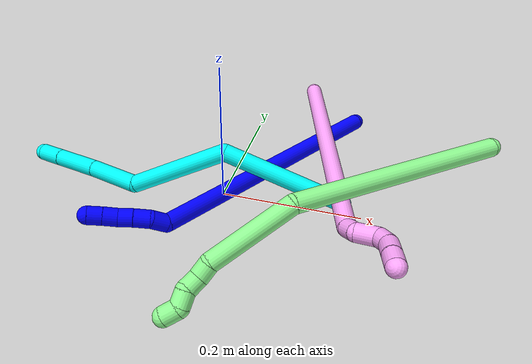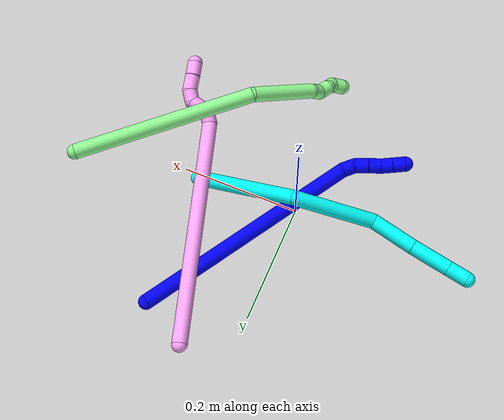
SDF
<sdf version="1.7">
 <world name="default">
  <model name="photoneo_s_sensor">
   <static>1</static>
   <pose>0 0 2 1.57079 1.57079 3.14159</pose>
   <link name="link">
    <inertial><mass>0.1</mass></inertial>
    <sensor name="sensor" type="depth">
     <update_rate>30</update_rate>
     <camera>
      <horizontal_fov>1.22</horizontal_fov>
      <image><width>1920</width><height>1200</height><format>B8G8R8</format></image>
      <clip><near>0.1</near><far>4</far></clip>
      <depth_camera><output>points</output></depth_camera>
     </camera>
     <plugin name="camera_plugin" filename="libgazebo_ros_depth_camera.so">
      <baseline>0.2</baseline>
      <alwaysOn>1</alwaysOn>
      <updateRate>0.0</updateRate>
      <cameraName>camera_ir</cameraName>
      <imageTopicName>/camera/color/image_raw</imageTopicName>
      <cameraInfoTopicName>/camera/color/camera_info</cameraInfoTopicName>
      <depthImageTopicName>/camera/depth/image_raw</depthImageTopicName>
      <depthImageCameraInfoTopicName>/camera/depth/camera_info</depthImageCameraInfoTopicName>
      <pointCloudTopicName>/camera/depth/points</pointCloudTopicName>
      <frameName>fr_optical</frameName>
      <pointCloudCutoff>0.1</pointCloudCutoff>
      <pointCloudCutoffMax>2.0</pointCloudCutoffMax>
      <distortionK1>0</distortionK1>
      <distortionK2>0</distortionK2>
      <distortionK3>0</distortionK3>
      <distortionT1>0</distortionT1>
      <distortionT2>0</distortionT2>
      <CxPrime>0</CxPrime>
      <Cx>0</Cx>
      <Cy>0</Cy>
      <focalLength>0</focalLength>
      <hackBaseline>0</hackBaseline>
     </plugin>
    </sensor>
   </link>
  </model>
  <model name="bin">
   <static>1</static>
   <link name="bottom">
    <collision name="collision-bottom">
     <pose>0 0 -0.01 0 -0 0</pose>
     <geometry><box><size>0.8 0.6 0.02</size></box></geometry>
     <surface>
      <friction><ode><mu>100</mu><mu2>100</mu2></ode></friction>
      <contact><collide_bitmask>65535</collide_bitmask></contact>
     </surface>
    </collision>
   </link>
   <link name="west_wall">
    <collision name="collision-west_wall">
     <pose>-0.41 0 0.1 0 -0 0</pose>
     <geometry><box><size>0.02 0.6 0.2</size></box></geometry>
     <surface>
      <friction><ode><mu>100</mu><mu2>100</mu2></ode></friction>
      <contact><collide_bitmask>65535</collide_bitmask></contact>
     </surface>
    </collision>
   </link>
   <link name="east_wall">
    <collision name="collision-east_wall">
     <pose>0.41 0 0.1 0 -0 0</pose>
     <geometry><box><size>0.02 0.6 0.2</size></box></geometry>
     <surface>
      <friction><ode><mu>100</mu><mu2>100</mu2></ode></friction>
      <contact><collide_bitmask>65535</collide_bitmask></contact>
     </surface>
    </collision>
   </link>
   <link name="south_wall">
    <collision name="collision-south_wall">
     <pose>0 -0.31 0.1 0 -0 0</pose>
     <geometry><box><size>0.8 0.02 0.2</size></box></geometry>
     <surface>
      <friction><ode><mu>100</mu><mu2>100</mu2></ode></friction>
      <contact><collide_bitmask>65535</collide_bitmask></contact>
     </surface>
    </collision>
   </link>
   <link name="north_wall">
    <collision name="collision-north_wall">
     <pose>0 0.31 0.1 0 -0 0</pose>
     <geometry><box><size>0.8 0.02 0.2</size></box></geometry>
     <surface>
      <friction><ode><mu>100</mu><mu2>100</mu2></ode></friction>
      <contact><collide_bitmask>65535</collide_bitmask></contact>
     </surface>
    </collision>
   </link>
  </model>
  <model name="1">
   <static>0</static>
   <link name="1">
    <collision name="collision-cylinder-e_1_1_4">
     <pose>-0.087661 -0.138229 0.10966 0.90014 -0.461099 -0.225844</pose>
     <geometry><cylinder><radius>0.0125</radius><length>0.394041</length></cylinder></geometry>
     <surface>
      <friction><ode><mu>1.16</mu><mu2>1.16</mu2><slip1>0</slip1><slip2>0</slip2></ode></friction>
      <contact><ode><kp>1e+06</kp><kd>1</kd><max_vel>0</max_vel><min_depth>0.001</min_depth></ode></contact>
     </surface>
    </collision>
    <visual name="visual-cylinder-e_1_1_4">
     <pose>-0.087661 -0.138229 0.10966 0.90014 -0.461099 -0.225844</pose>
     <geometry><cylinder><radius>0.0125</radius><length>0.394041</length></cylinder></geometry>
     <material><ambient>0 0 1 1</ambient></material>
    </visual>
    <collision name="collision-cylinder-e_2_4_5">
     <pose>-0.173062 -0.286502 0.22463 1.08451 0.196369 0.118554</pose>
     <geometry><cylinder><radius>0.0125</radius><length>0.023167</length></cylinder></geometry>
     <surface>
      <friction><ode><mu>1.16</mu><mu2>1.16</mu2><slip1>0</slip1><slip2>0</slip2></ode></friction>
      <contact><ode><kp>1e+06</kp><kd>1</kd><max_vel>0</max_vel><min_depth>0.001</min_depth></ode></contact>
     </surface>
    </collision>
    <visual name="visual-cylinder-e_2_4_5">
     <pose>-0.173062 -0.286502 0.22463 1.08451 0.196369 0.118554</pose>
     <geometry><cylinder><radius>0.0125</radius><length>0.023167</length></cylinder></geometry>
     <material><ambient>0 0 1 1</ambient></material>
    </visual>
    <collision name="collision-cylinder-e_3_5_6">
     <pose>-0.168375 -0.303322 0.238568 0.665735 0.217689 0.075525</pose>
     <geometry><cylinder><radius>0.0125</radius><length>0.022472</length></cylinder></geometry>
     <surface>
      <friction><ode><mu>1.16</mu><mu2>1.16</mu2><slip1>0</slip1><slip2>0</slip2></ode></friction>
      <contact><ode><kp>1e+06</kp><kd>1</kd><max_vel>0</max_vel><min_depth>0.001</min_depth></ode></contact>
     </surface>
    </collision>
    <visual name="visual-cylinder-e_3_5_6">
     <pose>-0.168375 -0.303322 0.238568 0.665735 0.217689 0.075525</pose>
     <geometry><cylinder><radius>0.0125</radius><length>0.022472</length></cylinder></geometry>
     <material><ambient>0 0 1 1</ambient></material>
    </visual>
    <collision name="collision-cylinder-e_4_6_7">
     <pose>-0.16413 -0.315647 0.255399 0.594744 0.181602 0.055793</pose>
     <geometry><cylinder><radius>0.0125</radius><length>0.02014</length></cylinder></geometry>
     <surface>
      <friction><ode><mu>1.16</mu><mu2>1.16</mu2><slip1>0</slip1><slip2>0</slip2></ode></friction>
      <contact><ode><kp>1e+06</kp><kd>1</kd><max_vel>0</max_vel><min_depth>0.001</min_depth></ode></contact>
     </surface>
    </collision>
    <visual name="visual-cylinder-e_4_6_7">
     <pose>-0.16413 -0.315647 0.255399 0.594744 0.181602 0.055793</pose>
     <geometry><cylinder><radius>0.0125</radius><length>0.02014</length></cylinder></geometry>
     <material><ambient>0 0 1 1</ambient></material>
    </visual>
    <collision name="collision-cylinder-e_5_7_8">
     <pose>-0.160406 -0.327988 0.270786 0.757379 0.190414 0.075958</pose>
     <geometry><cylinder><radius>0.0125</radius><length>0.020134</length></cylinder></geometry>
     <surface>
      <friction><ode><mu>1.16</mu><mu2>1.16</mu2><slip1>0</slip1><slip2>0</slip2></ode></friction>
      <contact><ode><kp>1e+06</kp><kd>1</kd><max_vel>0</max_vel><min_depth>0.001</min_depth></ode></contact>
     </surface>
    </collision>
    <visual name="visual-cylinder-e_5_7_8">
     <pose>-0.160406 -0.327988 0.270786 0.757379 0.190414 0.075958</pose>
     <geometry><cylinder><radius>0.0125</radius><length>0.020134</length></cylinder></geometry>
     <material><ambient>0 0 1 1</ambient></material>
    </visual>
    <collision name="collision-cylinder-e_6_8_2">
     <pose>-0.15695 -0.341437 0.285299 0.737408 0.155327 0.060117</pose>
     <geometry><cylinder><radius>0.0125</radius><length>0.020046</length></cylinder></geometry>
     <surface>
      <friction><ode><mu>1.16</mu><mu2>1.16</mu2><slip1>0</slip1><slip2>0</slip2></ode></friction>
      <contact><ode><kp>1e+06</kp><kd>1</kd><max_vel>0</max_vel><min_depth>0.001</min_depth></ode></contact>
     </surface>
    </collision>
    <visual name="visual-cylinder-e_6_8_2">
     <pose>-0.15695 -0.341437 0.285299 0.737408 0.155327 0.060117</pose>
     <geometry><cylinder><radius>0.0125</radius><length>0.020046</length></cylinder></geometry>
     <material><ambient>0 0 1 1</ambient></material>
    </visual>
    <collision name="collision-sphere-2">
     <pose>-0.155399 -0.348095 0.292629 0 -0 0</pose>
     <geometry><sphere><radius>0.0125</radius></sphere></geometry>
     <surface>
      <friction><ode><mu>1.16</mu><mu2>1.16</mu2><slip1>0</slip1><slip2>0</slip2></ode></friction>
      <contact><ode><kp>1e+06</kp><kd>1</kd><max_vel>0</max_vel><min_depth>0.001</min_depth></ode></contact>
     </surface>
    </collision>
    <visual name="visual-sphere-2">
     <pose>-0.155399 -0.348095 0.292629 0 -0 0</pose>
     <geometry><sphere><radius>0.0125</radius></sphere></geometry>
     <material><ambient>0 0 1 1</ambient></material>
    </visual>
    <collision name="collision-sphere-4">
     <pose>-0.175322 -0.276458 0.219321 0 -0 0</pose>
     <geometry><sphere><radius>0.0125</radius></sphere></geometry>
     <surface>
      <friction><ode><mu>1.16</mu><mu2>1.16</mu2><slip1>0</slip1><slip2>0</slip2></ode></friction>
      <contact><ode><kp>1e+06</kp><kd>1</kd><max_vel>0</max_vel><min_depth>0.001</min_depth></ode></contact>
     </surface>
    </collision>
    <visual name="visual-sphere-4">
     <pose>-0.175322 -0.276458 0.219321 0 -0 0</pose>
     <geometry><sphere><radius>0.0125</radius></sphere></geometry>
     <material><ambient>0 0 1 1</ambient></material>
    </visual>
    <collision name="collision-sphere-1">
     <geometry><sphere><radius>0.0125</radius></sphere></geometry>
     <surface>
      <friction><ode><mu>1.16</mu><mu2>1.16</mu2><slip1>0</slip1><slip2>0</slip2></ode></friction>
      <contact><ode><kp>1e+06</kp><kd>1</kd><max_vel>0</max_vel><min_depth>0.001</min_depth></ode></contact>
     </surface>
    </collision>
    <visual name="visual-sphere-1">
     <geometry><sphere><radius>0.0125</radius></sphere></geometry>
     <material><ambient>0 0 1 1</ambient></material>
    </visual>
    <collision name="collision-sphere-8">
     <pose>-0.1585 -0.334779 0.277969 0 -0 0</pose>
     <geometry><sphere><radius>0.0125</radius></sphere></geometry>
     <surface>
      <friction><ode><mu>1.16</mu><mu2>1.16</mu2><slip1>0</slip1><slip2>0</slip2></ode></friction>
      <contact><ode><kp>1e+06</kp><kd>1</kd><max_vel>0</max_vel><min_depth>0.001</min_depth></ode></contact>
     </surface>
    </collision>
    <visual name="visual-sphere-8">
     <pose>-0.1585 -0.334779 0.277969 0 -0 0</pose>
     <geometry><sphere><radius>0.0125</radius></sphere></geometry>
     <material><ambient>0 0 1 1</ambient></material>
    </visual>
    <collision name="collision-sphere-5">
     <pose>-0.170802 -0.296546 0.22994 0 -0 0</pose>
     <geometry><sphere><radius>0.0125</radius></sphere></geometry>
     <surface>
      <friction><ode><mu>1.16</mu><mu2>1.16</mu2><slip1>0</slip1><slip2>0</slip2></ode></friction>
      <contact><ode><kp>1e+06</kp><kd>1</kd><max_vel>0</max_vel><min_depth>0.001</min_depth></ode></contact>
     </surface>
    </collision>
    <visual name="visual-sphere-5">
     <pose>-0.170802 -0.296546 0.22994 0 -0 0</pose>
     <geometry><sphere><radius>0.0125</radius></sphere></geometry>
     <material><ambient>0 0 1 1</ambient></material>
    </visual>
    <collision name="collision-sphere-6">
     <pose>-0.165948 -0.310098 0.247196 0 -0 0</pose>
     <geometry><sphere><radius>0.0125</radius></sphere></geometry>
     <surface>
      <friction><ode><mu>1.16</mu><mu2>1.16</mu2><slip1>0</slip1><slip2>0</slip2></ode></friction>
      <contact><ode><kp>1e+06</kp><kd>1</kd><max_vel>0</max_vel><min_depth>0.001</min_depth></ode></contact>
     </surface>
    </collision>
    <visual name="visual-sphere-6">
     <pose>-0.165948 -0.310098 0.247196 0 -0 0</pose>
     <geometry><sphere><radius>0.0125</radius></sphere></geometry>
     <material><ambient>0 0 1 1</ambient></material>
    </visual>
    <collision name="collision-sphere-7">
     <pose>-0.162311 -0.321197 0.263603 0 -0 0</pose>
     <geometry><sphere><radius>0.0125</radius></sphere></geometry>
     <surface>
      <friction><ode><mu>1.16</mu><mu2>1.16</mu2><slip1>0</slip1><slip2>0</slip2></ode></friction>
      <contact><ode><kp>1e+06</kp><kd>1</kd><max_vel>0</max_vel><min_depth>0.001</min_depth></ode></contact>
     </surface>
    </collision>
    <visual name="visual-sphere-7">
     <pose>-0.162311 -0.321197 0.263603 0 -0 0</pose>
     <geometry><sphere><radius>0.0125</radius></sphere></geometry>
     <material><ambient>0 0 1 1</ambient></material>
    </visual>
    <inertial>
     <pose>-0.104033 -0.175454 0.140181 0 -0 0</pose>
     <mass>0.5</mass>
     <inertia><ixx>0.003434</ixx><ixy>0</ixy><ixz>0</ixz><iyy>0.00245</iyy><iyz>0</iyz><izz>0.00589</izz></inertia>
    </inertial>
   </link>
   <pose>0.156542 0.240825 0.011516 -2.19637 -0.499641 2.06819</pose>
  </model>
  <model name="3">
   <static>0</static>
   <link name="3">
    <collision name="collision-cylinder-e_1_1_4">
     <pose>-0.048082 0.030515 0.068901 -0.416912 -0.567942 0.123316</pose>
     <geometry><cylinder><radius>0.0125</radius><length>0.178779</length></cylinder></geometry>
     <surface>
      <friction><ode><mu>1.16</mu><mu2>1.16</mu2><slip1>0</slip1><slip2>0</slip2></ode></friction>
      <contact><ode><kp>1e+06</kp><kd>1</kd><max_vel>0</max_vel><min_depth>0.001</min_depth></ode></contact>
     </surface>
    </collision>
    <visual name="visual-cylinder-e_1_1_4">
     <pose>-0.048082 0.030515 0.068901 -0.416912 -0.567942 0.123316</pose>
     <geometry><cylinder><radius>0.0125</radius><length>0.178779</length></cylinder></geometry>
     <material><ambient>0.003922 1 0.996078 1</ambient></material>
    </visual>
    <collision name="collision-cylinder-e_2_4_5">
     <pose>-0.145828 0.034351 0.182445 0.538664 -0.762353 -0.220365</pose>
     <geometry><cylinder><radius>0.0125</radius><length>0.14382</length></cylinder></geometry>
     <surface>
      <friction><ode><mu>1.16</mu><mu2>1.16</mu2><slip1>0</slip1><slip2>0</slip2></ode></friction>
      <contact><ode><kp>1e+06</kp><kd>1</kd><max_vel>0</max_vel><min_depth>0.001</min_depth></ode></contact>
     </surface>
    </collision>
    <visual name="visual-cylinder-e_2_4_5">
     <pose>-0.145828 0.034351 0.182445 0.538664 -0.762353 -0.220365</pose>
     <geometry><cylinder><radius>0.0125</radius><length>0.14382</length></cylinder></geometry>
     <material><ambient>0.003922 1 0.996078 1</ambient></material>
    </visual>
    <collision name="collision-cylinder-e_3_5_6">
     <pose>-0.227383 0.016741 0.246705 -0.433008 -0.975187 0.232232</pose>
     <geometry><cylinder><radius>0.0125</radius><length>0.077052</length></cylinder></geometry>
     <surface>
      <friction><ode><mu>1.16</mu><mu2>1.16</mu2><slip1>0</slip1><slip2>0</slip2></ode></friction>
      <contact><ode><kp>1e+06</kp><kd>1</kd><max_vel>0</max_vel><min_depth>0.001</min_depth></ode></contact>
     </surface>
    </collision>
    <visual name="visual-cylinder-e_3_5_6">
     <pose>-0.227383 0.016741 0.246705 -0.433008 -0.975187 0.232232</pose>
     <geometry><cylinder><radius>0.0125</radius><length>0.077052</length></cylinder></geometry>
     <material><ambient>0.003922 1 0.996078 1</ambient></material>
    </visual>
    <collision name="collision-cylinder-e_4_6_7">
     <pose>-0.286069 0.032523 0.284187 -0.359483 -0.951937 0.186789</pose>
     <geometry><cylinder><radius>0.0125</radius><length>0.06579</length></cylinder></geometry>
     <surface>
      <friction><ode><mu>1.16</mu><mu2>1.16</mu2><slip1>0</slip1><slip2>0</slip2></ode></friction>
      <contact><ode><kp>1e+06</kp><kd>1</kd><max_vel>0</max_vel><min_depth>0.001</min_depth></ode></contact>
     </surface>
    </collision>
    <visual name="visual-cylinder-e_4_6_7">
     <pose>-0.286069 0.032523 0.284187 -0.359483 -0.951937 0.186789</pose>
     <geometry><cylinder><radius>0.0125</radius><length>0.06579</length></cylinder></geometry>
     <material><ambient>0.003922 1 0.996078 1</ambient></material>
    </visual>
    <collision name="collision-cylinder-e_5_7_2">
     <pose>-0.326921 0.042712 0.311478 -0.353166 -0.950248 0.183078</pose>
     <geometry><cylinder><radius>0.0125</radius><length>0.034559</length></cylinder></geometry>
     <surface>
      <friction><ode><mu>1.16</mu><mu2>1.16</mu2><slip1>0</slip1><slip2>0</slip2></ode></friction>
      <contact><ode><kp>1e+06</kp><kd>1</kd><max_vel>0</max_vel><min_depth>0.001</min_depth></ode></contact>
     </surface>
    </collision>
    <visual name="visual-cylinder-e_5_7_2">
     <pose>-0.326921 0.042712 0.311478 -0.353166 -0.950248 0.183078</pose>
     <geometry><cylinder><radius>0.0125</radius><length>0.034559</length></cylinder></geometry>
     <material><ambient>0.003922 1 0.996078 1</ambient></material>
    </visual>
    <collision name="collision-sphere-2">
     <pose>-0.340979 0.046187 0.320905 0 -0 0</pose>
     <geometry><sphere><radius>0.0125</radius></sphere></geometry>
     <surface>
      <friction><ode><mu>1.16</mu><mu2>1.16</mu2><slip1>0</slip1><slip2>0</slip2></ode></friction>
      <contact><ode><kp>1e+06</kp><kd>1</kd><max_vel>0</max_vel><min_depth>0.001</min_depth></ode></contact>
     </surface>
    </collision>
    <visual name="visual-sphere-2">
     <pose>-0.340979 0.046187 0.320905 0 -0 0</pose>
     <geometry><sphere><radius>0.0125</radius></sphere></geometry>
     <material><ambient>0.003922 1 0.996078 1</ambient></material>
    </visual>
    <collision name="collision-sphere-7">
     <pose>-0.312863 0.039236 0.30205 0 -0 0</pose>
     <geometry><sphere><radius>0.0125</radius></sphere></geometry>
     <surface>
      <friction><ode><mu>1.16</mu><mu2>1.16</mu2><slip1>0</slip1><slip2>0</slip2></ode></friction>
      <contact><ode><kp>1e+06</kp><kd>1</kd><max_vel>0</max_vel><min_depth>0.001</min_depth></ode></contact>
     </surface>
    </collision>
    <visual name="visual-sphere-7">
     <pose>-0.312863 0.039236 0.30205 0 -0 0</pose>
     <geometry><sphere><radius>0.0125</radius></sphere></geometry>
     <material><ambient>0.003922 1 0.996078 1</ambient></material>
    </visual>
    <collision name="collision-sphere-6">
     <pose>-0.259275 0.02581 0.266324 0 -0 0</pose>
     <geometry><sphere><radius>0.0125</radius></sphere></geometry>
     <surface>
      <friction><ode><mu>1.16</mu><mu2>1.16</mu2><slip1>0</slip1><slip2>0</slip2></ode></friction>
      <contact><ode><kp>1e+06</kp><kd>1</kd><max_vel>0</max_vel><min_depth>0.001</min_depth></ode></contact>
     </surface>
    </collision>
    <visual name="visual-sphere-6">
     <pose>-0.259275 0.02581 0.266324 0 -0 0</pose>
     <geometry><sphere><radius>0.0125</radius></sphere></geometry>
     <material><ambient>0.003922 1 0.996078 1</ambient></material>
    </visual>
    <collision name="collision-sphere-5">
     <pose>-0.19549 0.007672 0.227087 0 -0 0</pose>
     <geometry><sphere><radius>0.0125</radius></sphere></geometry>
     <surface>
      <friction><ode><mu>1.16</mu><mu2>1.16</mu2><slip1>0</slip1><slip2>0</slip2></ode></friction>
      <contact><ode><kp>1e+06</kp><kd>1</kd><max_vel>0</max_vel><min_depth>0.001</min_depth></ode></contact>
     </surface>
    </collision>
    <visual name="visual-sphere-5">
     <pose>-0.19549 0.007672 0.227087 0 -0 0</pose>
     <geometry><sphere><radius>0.0125</radius></sphere></geometry>
     <material><ambient>0.003922 1 0.996078 1</ambient></material>
    </visual>
    <collision name="collision-sphere-1">
     <geometry><sphere><radius>0.0125</radius></sphere></geometry>
     <surface>
      <friction><ode><mu>1.16</mu><mu2>1.16</mu2><slip1>0</slip1><slip2>0</slip2></ode></friction>
      <contact><ode><kp>1e+06</kp><kd>1</kd><max_vel>0</max_vel><min_depth>0.001</min_depth></ode></contact>
     </surface>
    </collision>
    <visual name="visual-sphere-1">
     <geometry><sphere><radius>0.0125</radius></sphere></geometry>
     <material><ambient>0.003922 1 0.996078 1</ambient></material>
    </visual>
    <collision name="collision-sphere-4">
     <pose>-0.096165 0.061029 0.137803 0 -0 0</pose>
     <geometry><sphere><radius>0.0125</radius></sphere></geometry>
     <surface>
      <friction><ode><mu>1.16</mu><mu2>1.16</mu2><slip1>0</slip1><slip2>0</slip2></ode></friction>
      <contact><ode><kp>1e+06</kp><kd>1</kd><max_vel>0</max_vel><min_depth>0.001</min_depth></ode></contact>
     </surface>
    </collision>
    <visual name="visual-sphere-4">
     <pose>-0.096165 0.061029 0.137803 0 -0 0</pose>
     <geometry><sphere><radius>0.0125</radius></sphere></geometry>
     <material><ambient>0.003922 1 0.996078 1</ambient></material>
    </visual>
    <inertial>
     <pose>-0.154416 0.030603 0.174055 0 -0 0</pose>
     <mass>0.5</mass>
     <inertia>
      <ixx>0.000615</ixx>
      <ixy>0</ixy>
      <ixz>0</ixz>
      <iyy>0.000776</iyy>
      <iyz>0</iyz>
      <izz>0.000433</izz>
     </inertia>
    </inertial>
   </link>
   <pose>0.170926 0.011811 0.012284 1.16624 -0.461756 -0.62039</pose>
  </model>
  <model name="4">
   <static>0</static>
   <link name="4">
    <collision name="collision-cylinder-e_1_1_4">
     <pose>0.003681 -0.167025 -0.090285 2.06635 0.019385 0.032513</pose>
     <geometry><cylinder><radius>0.0125</radius><length>0.379802</length></cylinder></geometry>
     <surface>
      <friction><ode><mu>1.16</mu><mu2>1.16</mu2><slip1>0</slip1><slip2>0</slip2></ode></friction>
      <contact><ode><kp>1e+06</kp><kd>1</kd><max_vel>0</max_vel><min_depth>0.001</min_depth></ode></contact>
     </surface>
    </collision>
    <visual name="visual-cylinder-e_1_1_4">
     <pose>0.003681 -0.167025 -0.090285 2.06635 0.019385 0.032513</pose>
     <geometry><cylinder><radius>0.0125</radius><length>0.379802</length></cylinder></geometry>
     <material><ambient>1 0.65098 0.996078 1</ambient></material>
    </visual>
    <collision name="collision-cylinder-e_2_4_5">
     <pose>0.002375 -0.342255 -0.184808 2.04761 -0.495185 -0.786893</pose>
     <geometry><cylinder><radius>0.0125</radius><length>0.02099</length></cylinder></geometry>
     <surface>
      <friction><ode><mu>1.16</mu><mu2>1.16</mu2><slip1>0</slip1><slip2>0</slip2></ode></friction>
      <contact><ode><kp>1e+06</kp><kd>1</kd><max_vel>0</max_vel><min_depth>0.001</min_depth></ode></contact>
     </surface>
    </collision>
    <visual name="visual-cylinder-e_2_4_5">
     <pose>0.002375 -0.342255 -0.184808 2.04761 -0.495185 -0.786893</pose>
     <geometry><cylinder><radius>0.0125</radius><length>0.02099</length></cylinder></geometry>
     <material><ambient>1 0.65098 0.996078 1</ambient></material>
    </visual>
    <collision name="collision-cylinder-e_3_5_6">
     <pose>-0.012224 -0.360904 -0.184929 1.19529 -0.708067 -0.492942</pose>
     <geometry><cylinder><radius>0.0125</radius><length>0.029559</length></cylinder></geometry>
     <surface>
      <friction><ode><mu>1.16</mu><mu2>1.16</mu2><slip1>0</slip1><slip2>0</slip2></ode></friction>
      <contact><ode><kp>1e+06</kp><kd>1</kd><max_vel>0</max_vel><min_depth>0.001</min_depth></ode></contact>
     </surface>
    </collision>
    <visual name="visual-cylinder-e_3_5_6">
     <pose>-0.012224 -0.360904 -0.184929 1.19529 -0.708067 -0.492942</pose>
     <geometry><cylinder><radius>0.0125</radius><length>0.029559</length></cylinder></geometry>
     <material><ambient>1 0.65098 0.996078 1</ambient></material>
    </visual>
    <collision name="collision-cylinder-e_4_6_7">
     <pose>-0.025783 -0.379846 -0.184557 1.98587 -0.401841 -0.605439</pose>
     <geometry><cylinder><radius>0.0125</radius><length>0.02018</length></cylinder></geometry>
     <surface>
      <friction><ode><mu>1.16</mu><mu2>1.16</mu2><slip1>0</slip1><slip2>0</slip2></ode></friction>
      <contact><ode><kp>1e+06</kp><kd>1</kd><max_vel>0</max_vel><min_depth>0.001</min_depth></ode></contact>
     </surface>
    </collision>
    <visual name="visual-cylinder-e_4_6_7">
     <pose>-0.025783 -0.379846 -0.184557 1.98587 -0.401841 -0.605439</pose>
     <geometry><cylinder><radius>0.0125</radius><length>0.02018</length></cylinder></geometry>
     <material><ambient>1 0.65098 0.996078 1</ambient></material>
    </visual>
    <collision name="collision-cylinder-e_5_7_8">
     <pose>-0.03106 -0.397937 -0.196685 2.28899 -0.104074 -0.228371</pose>
     <geometry><cylinder><radius>0.0125</radius><length>0.02562</length></cylinder></geometry>
     <surface>
      <friction><ode><mu>1.16</mu><mu2>1.16</mu2><slip1>0</slip1><slip2>0</slip2></ode></friction>
      <contact><ode><kp>1e+06</kp><kd>1</kd><max_vel>0</max_vel><min_depth>0.001</min_depth></ode></contact>
     </surface>
    </collision>
    <visual name="visual-cylinder-e_5_7_8">
     <pose>-0.03106 -0.397937 -0.196685 2.28899 -0.104074 -0.228371</pose>
     <geometry><cylinder><radius>0.0125</radius><length>0.02562</length></cylinder></geometry>
     <material><ambient>1 0.65098 0.996078 1</ambient></material>
    </visual>
    <collision name="collision-cylinder-e_6_8_2">
     <pose>-0.033042 -0.417105 -0.212148 2.20755 -0.05469 -0.108385</pose>
     <geometry><cylinder><radius>0.0125</radius><length>0.023849</length></cylinder></geometry>
     <surface>
      <friction><ode><mu>1.16</mu><mu2>1.16</mu2><slip1>0</slip1><slip2>0</slip2></ode></friction>
      <contact><ode><kp>1e+06</kp><kd>1</kd><max_vel>0</max_vel><min_depth>0.001</min_depth></ode></contact>
     </surface>
    </collision>
    <visual name="visual-cylinder-e_6_8_2">
     <pose>-0.033042 -0.417105 -0.212148 2.20755 -0.05469 -0.108385</pose>
     <geometry><cylinder><radius>0.0125</radius><length>0.023849</length></cylinder></geometry>
     <material><ambient>1 0.65098 0.996078 1</ambient></material>
    </visual>
    <collision name="collision-sphere-2">
     <pose>-0.033694 -0.426678 -0.219228 0 -0 0</pose>
     <geometry><sphere><radius>0.0125</radius></sphere></geometry>
     <surface>
      <friction><ode><mu>1.16</mu><mu2>1.16</mu2><slip1>0</slip1><slip2>0</slip2></ode></friction>
      <contact><ode><kp>1e+06</kp><kd>1</kd><max_vel>0</max_vel><min_depth>0.001</min_depth></ode></contact>
     </surface>
    </collision>
    <visual name="visual-sphere-2">
     <pose>-0.033694 -0.426678 -0.219228 0 -0 0</pose>
     <geometry><sphere><radius>0.0125</radius></sphere></geometry>
     <material><ambient>1 0.65098 0.996078 1</ambient></material>
    </visual>
    <collision name="collision-sphere-4">
     <pose>0.007362 -0.33405 -0.18057 0 -0 0</pose>
     <geometry><sphere><radius>0.0125</radius></sphere></geometry>
     <surface>
      <friction><ode><mu>1.16</mu><mu2>1.16</mu2><slip1>0</slip1><slip2>0</slip2></ode></friction>
      <contact><ode><kp>1e+06</kp><kd>1</kd><max_vel>0</max_vel><min_depth>0.001</min_depth></ode></contact>
     </surface>
    </collision>
    <visual name="visual-sphere-4">
     <pose>0.007362 -0.33405 -0.18057 0 -0 0</pose>
     <geometry><sphere><radius>0.0125</radius></sphere></geometry>
     <material><ambient>1 0.65098 0.996078 1</ambient></material>
    </visual>
    <collision name="collision-sphere-1">
     <geometry><sphere><radius>0.0125</radius></sphere></geometry>
     <surface>
      <friction><ode><mu>1.16</mu><mu2>1.16</mu2><slip1>0</slip1><slip2>0</slip2></ode></friction>
      <contact><ode><kp>1e+06</kp><kd>1</kd><max_vel>0</max_vel><min_depth>0.001</min_depth></ode></contact>
     </surface>
    </collision>
    <visual name="visual-sphere-1">
     <geometry><sphere><radius>0.0125</radius></sphere></geometry>
     <material><ambient>1 0.65098 0.996078 1</ambient></material>
    </visual>
    <collision name="collision-sphere-8">
     <pose>-0.032391 -0.407531 -0.205069 0 -0 0</pose>
     <geometry><sphere><radius>0.0125</radius></sphere></geometry>
     <surface>
      <friction><ode><mu>1.16</mu><mu2>1.16</mu2><slip1>0</slip1><slip2>0</slip2></ode></friction>
      <contact><ode><kp>1e+06</kp><kd>1</kd><max_vel>0</max_vel><min_depth>0.001</min_depth></ode></contact>
     </surface>
    </collision>
    <visual name="visual-sphere-8">
     <pose>-0.032391 -0.407531 -0.205069 0 -0 0</pose>
     <geometry><sphere><radius>0.0125</radius></sphere></geometry>
     <material><ambient>1 0.65098 0.996078 1</ambient></material>
    </visual>
    <collision name="collision-sphere-5">
     <pose>-0.002612 -0.350459 -0.189046 0 -0 0</pose>
     <geometry><sphere><radius>0.0125</radius></sphere></geometry>
     <surface>
      <friction><ode><mu>1.16</mu><mu2>1.16</mu2><slip1>0</slip1><slip2>0</slip2></ode></friction>
      <contact><ode><kp>1e+06</kp><kd>1</kd><max_vel>0</max_vel><min_depth>0.001</min_depth></ode></contact>
     </surface>
    </collision>
    <visual name="visual-sphere-5">
     <pose>-0.002612 -0.350459 -0.189046 0 -0 0</pose>
     <geometry><sphere><radius>0.0125</radius></sphere></geometry>
     <material><ambient>1 0.65098 0.996078 1</ambient></material>
    </visual>
    <collision name="collision-sphere-6">
     <pose>-0.021836 -0.371348 -0.180812 0 -0 0</pose>
     <geometry><sphere><radius>0.0125</radius></sphere></geometry>
     <surface>
      <friction><ode><mu>1.16</mu><mu2>1.16</mu2><slip1>0</slip1><slip2>0</slip2></ode></friction>
      <contact><ode><kp>1e+06</kp><kd>1</kd><max_vel>0</max_vel><min_depth>0.001</min_depth></ode></contact>
     </surface>
    </collision>
    <visual name="visual-sphere-6">
     <pose>-0.021836 -0.371348 -0.180812 0 -0 0</pose>
     <geometry><sphere><radius>0.0125</radius></sphere></geometry>
     <material><ambient>1 0.65098 0.996078 1</ambient></material>
    </visual>
    <collision name="collision-sphere-7">
     <pose>-0.029729 -0.388344 -0.188301 0 -0 0</pose>
     <geometry><sphere><radius>0.0125</radius></sphere></geometry>
     <surface>
      <friction><ode><mu>1.16</mu><mu2>1.16</mu2><slip1>0</slip1><slip2>0</slip2></ode></friction>
      <contact><ode><kp>1e+06</kp><kd>1</kd><max_vel>0</max_vel><min_depth>0.001</min_depth></ode></contact>
     </surface>
    </collision>
    <visual name="visual-sphere-7">
     <pose>-0.029729 -0.388344 -0.188301 0 -0 0</pose>
     <geometry><sphere><radius>0.0125</radius></sphere></geometry>
     <material><ambient>1 0.65098 0.996078 1</ambient></material>
    </visual>
    <inertial>
     <pose>-0.002035 -0.218193 -0.114918 0 -0 0</pose>
     <mass>0.5</mass>
     <inertia>
      <ixx>0.004728</ixx>
      <ixy>0</ixy>
      <ixz>0</ixz>
      <iyy>-0.002063</iyy>
      <iyz>0</iyz>
      <izz>0.003935</izz>
     </inertia>
    </inertial>
   </link>
   <pose>0.074311 0.287589 0.034165 2.70805 0.867032 -2.77807</pose>
  </model>
  <model name="13">
   <static>0</static>
   <link name="13">
    <collision name="collision-cylinder-e_1_1_4">
     <pose>-0.088818 -0.096042 0.074177 0.913152 -0.631823 -0.318383</pose>
     <geometry><cylinder><radius>0.0125</radius><length>0.300765</length></cylinder></geometry>
     <surface>
      <friction><ode><mu>1.16</mu><mu2>1.16</mu2><slip1>0</slip1><slip2>0</slip2></ode></friction>
      <contact><ode><kp>1e+06</kp><kd>1</kd><max_vel>0</max_vel><min_depth>0.001</min_depth></ode></contact>
     </surface>
    </collision>
    <visual name="visual-cylinder-e_1_1_4">
     <pose>-0.088818 -0.096042 0.074177 0.913152 -0.631823 -0.318383</pose>
     <geometry><cylinder><radius>0.0125</radius><length>0.300765</length></cylinder></geometry>
     <material><ambient>0.564706 0.984314 0.572549 1</ambient></material>
    </visual>
    <collision name="collision-cylinder-e_2_4_5">
     <pose>-0.213097 -0.237848 0.152417 1.48224 -0.657318 -0.60502</pose>
     <geometry><cylinder><radius>0.0125</radius><length>0.116074</length></cylinder></geometry>
     <surface>
      <friction><ode><mu>1.16</mu><mu2>1.16</mu2><slip1>0</slip1><slip2>0</slip2></ode></friction>
      <contact><ode><kp>1e+06</kp><kd>1</kd><max_vel>0</max_vel><min_depth>0.001</min_depth></ode></contact>
     </surface>
    </collision>
    <visual name="visual-cylinder-e_2_4_5">
     <pose>-0.213097 -0.237848 0.152417 1.48224 -0.657318 -0.60502</pose>
     <geometry><cylinder><radius>0.0125</radius><length>0.116074</length></cylinder></geometry>
     <material><ambient>0.564706 0.984314 0.572549 1</ambient></material>
    </visual>
    <collision name="collision-cylinder-e_3_5_6">
     <pose>-0.253701 -0.292389 0.153503 1.89782 -0.506587 -0.693134</pose>
     <geometry><cylinder><radius>0.0125</radius><length>0.021199</length></cylinder></geometry>
     <surface>
      <friction><ode><mu>1.16</mu><mu2>1.16</mu2><slip1>0</slip1><slip2>0</slip2></ode></friction>
      <contact><ode><kp>1e+06</kp><kd>1</kd><max_vel>0</max_vel><min_depth>0.001</min_depth></ode></contact>
     </surface>
    </collision>
    <visual name="visual-cylinder-e_3_5_6">
     <pose>-0.253701 -0.292389 0.153503 1.89782 -0.506587 -0.693134</pose>
     <geometry><cylinder><radius>0.0125</radius><length>0.021199</length></cylinder></geometry>
     <material><ambient>0.564706 0.984314 0.572549 1</ambient></material>
    </visual>
    <collision name="collision-cylinder-e_4_6_7">
     <pose>-0.261977 -0.310617 0.153205 1.29457 -0.30876 -0.234196</pose>
     <geometry><cylinder><radius>0.0125</radius><length>0.020622</length></cylinder></geometry>
     <surface>
      <friction><ode><mu>1.16</mu><mu2>1.16</mu2><slip1>0</slip1><slip2>0</slip2></ode></friction>
      <contact><ode><kp>1e+06</kp><kd>1</kd><max_vel>0</max_vel><min_depth>0.001</min_depth></ode></contact>
     </surface>
    </collision>
    <visual name="visual-cylinder-e_4_6_7">
     <pose>-0.261977 -0.310617 0.153205 1.29457 -0.30876 -0.234196</pose>
     <geometry><cylinder><radius>0.0125</radius><length>0.020622</length></cylinder></geometry>
     <material><ambient>0.564706 0.984314 0.572549 1</ambient></material>
    </visual>
    <collision name="collision-cylinder-e_5_7_8">
     <pose>-0.26614 -0.329882 0.153744 1.78547 -0.102184 -0.126805</pose>
     <geometry><cylinder><radius>0.0125</radius><length>0.020196</length></cylinder></geometry>
     <surface>
      <friction><ode><mu>1.16</mu><mu2>1.16</mu2><slip1>0</slip1><slip2>0</slip2></ode></friction>
      <contact><ode><kp>1e+06</kp><kd>1</kd><max_vel>0</max_vel><min_depth>0.001</min_depth></ode></contact>
     </surface>
    </collision>
    <visual name="visual-cylinder-e_5_7_8">
     <pose>-0.26614 -0.329882 0.153744 1.78547 -0.102184 -0.126805</pose>
     <geometry><cylinder><radius>0.0125</radius><length>0.020196</length></cylinder></geometry>
     <material><ambient>0.564706 0.984314 0.572549 1</ambient></material>
    </visual>
    <collision name="collision-cylinder-e_6_8_2">
     <pose>-0.275256 -0.346483 0.151028 1.65546 -0.870853 -0.937441</pose>
     <geometry><cylinder><radius>0.0125</radius><length>0.021144</length></cylinder></geometry>
     <surface>
      <friction><ode><mu>1.16</mu><mu2>1.16</mu2><slip1>0</slip1><slip2>0</slip2></ode></friction>
      <contact><ode><kp>1e+06</kp><kd>1</kd><max_vel>0</max_vel><min_depth>0.001</min_depth></ode></contact>
     </surface>
    </collision>
    <visual name="visual-cylinder-e_6_8_2">
     <pose>-0.275256 -0.346483 0.151028 1.65546 -0.870853 -0.937441</pose>
     <geometry><cylinder><radius>0.0125</radius><length>0.021144</length></cylinder></geometry>
     <material><ambient>0.564706 0.984314 0.572549 1</ambient></material>
    </visual>
    <collision name="collision-sphere-2">
     <pose>-0.283342 -0.353269 0.150452 0 -0 0</pose>
     <geometry><sphere><radius>0.0125</radius></sphere></geometry>
     <surface>
      <friction><ode><mu>1.16</mu><mu2>1.16</mu2><slip1>0</slip1><slip2>0</slip2></ode></friction>
      <contact><ode><kp>1e+06</kp><kd>1</kd><max_vel>0</max_vel><min_depth>0.001</min_depth></ode></contact>
     </surface>
    </collision>
    <visual name="visual-sphere-2">
     <pose>-0.283342 -0.353269 0.150452 0 -0 0</pose>
     <geometry><sphere><radius>0.0125</radius></sphere></geometry>
     <material><ambient>0.564706 0.984314 0.572549 1</ambient></material>
    </visual>
    <collision name="collision-sphere-4">
     <pose>-0.177637 -0.192083 0.148353 0 -0 0</pose>
     <geometry><sphere><radius>0.0125</radius></sphere></geometry>
     <surface>
      <friction><ode><mu>1.16</mu><mu2>1.16</mu2><slip1>0</slip1><slip2>0</slip2></ode></friction>
      <contact><ode><kp>1e+06</kp><kd>1</kd><max_vel>0</max_vel><min_depth>0.001</min_depth></ode></contact>
     </surface>
    </collision>
    <visual name="visual-sphere-4">
     <pose>-0.177637 -0.192083 0.148353 0 -0 0</pose>
     <geometry><sphere><radius>0.0125</radius></sphere></geometry>
     <material><ambient>0.564706 0.984314 0.572549 1</ambient></material>
    </visual>
    <collision name="collision-sphere-1">
     <geometry><sphere><radius>0.0125</radius></sphere></geometry>
     <surface>
      <friction><ode><mu>1.16</mu><mu2>1.16</mu2><slip1>0</slip1><slip2>0</slip2></ode></friction>
      <contact><ode><kp>1e+06</kp><kd>1</kd><max_vel>0</max_vel><min_depth>0.001</min_depth></ode></contact>
     </surface>
    </collision>
    <visual name="visual-sphere-1">
     <geometry><sphere><radius>0.0125</radius></sphere></geometry>
     <material><ambient>0.564706 0.984314 0.572549 1</ambient></material>
    </visual>
    <collision name="collision-sphere-8">
     <pose>-0.26717 -0.339697 0.151604 0 -0 0</pose>
     <geometry><sphere><radius>0.0125</radius></sphere></geometry>
     <surface>
      <friction><ode><mu>1.16</mu><mu2>1.16</mu2><slip1>0</slip1><slip2>0</slip2></ode></friction>
      <contact><ode><kp>1e+06</kp><kd>1</kd><max_vel>0</max_vel><min_depth>0.001</min_depth></ode></contact>
     </surface>
    </collision>
    <visual name="visual-sphere-8">
     <pose>-0.26717 -0.339697 0.151604 0 -0 0</pose>
     <geometry><sphere><radius>0.0125</radius></sphere></geometry>
     <material><ambient>0.564706 0.984314 0.572549 1</ambient></material>
    </visual>
    <collision name="collision-sphere-5">
     <pose>-0.248558 -0.283612 0.15648 0 -0 0</pose>
     <geometry><sphere><radius>0.0125</radius></sphere></geometry>
     <surface>
      <friction><ode><mu>1.16</mu><mu2>1.16</mu2><slip1>0</slip1><slip2>0</slip2></ode></friction>
      <contact><ode><kp>1e+06</kp><kd>1</kd><max_vel>0</max_vel><min_depth>0.001</min_depth></ode></contact>
     </surface>
    </collision>
    <visual name="visual-sphere-5">
     <pose>-0.248558 -0.283612 0.15648 0 -0 0</pose>
     <geometry><sphere><radius>0.0125</radius></sphere></geometry>
     <material><ambient>0.564706 0.984314 0.572549 1</ambient></material>
    </visual>
    <collision name="collision-sphere-6">
     <pose>-0.258843 -0.301166 0.150526 0 -0 0</pose>
     <geometry><sphere><radius>0.0125</radius></sphere></geometry>
     <surface>
      <friction><ode><mu>1.16</mu><mu2>1.16</mu2><slip1>0</slip1><slip2>0</slip2></ode></friction>
      <contact><ode><kp>1e+06</kp><kd>1</kd><max_vel>0</max_vel><min_depth>0.001</min_depth></ode></contact>
     </surface>
    </collision>
    <visual name="visual-sphere-6">
     <pose>-0.258843 -0.301166 0.150526 0 -0 0</pose>
     <geometry><sphere><radius>0.0125</radius></sphere></geometry>
     <material><ambient>0.564706 0.984314 0.572549 1</ambient></material>
    </visual>
    <collision name="collision-sphere-7">
     <pose>-0.26511 -0.320067 0.155884 0 -0 0</pose>
     <geometry><sphere><radius>0.0125</radius></sphere></geometry>
     <surface>
      <friction><ode><mu>1.16</mu><mu2>1.16</mu2><slip1>0</slip1><slip2>0</slip2></ode></friction>
      <contact><ode><kp>1e+06</kp><kd>1</kd><max_vel>0</max_vel><min_depth>0.001</min_depth></ode></contact>
     </surface>
    </collision>
    <visual name="visual-sphere-7">
     <pose>-0.26511 -0.320067 0.155884 0 -0 0</pose>
     <geometry><sphere><radius>0.0125</radius></sphere></geometry>
     <material><ambient>0.564706 0.984314 0.572549 1</ambient></material>
    </visual>
    <inertial>
     <pose>-0.146848 -0.166172 0.105426 0 -0 0</pose>
     <mass>0.5</mass>
     <inertia>
      <ixx>0.001178</ixx>
      <ixy>0</ixy>
      <ixz>0</ixz>
      <iyy>0.001048</iyy>
      <iyz>0</iyz>
      <izz>0.00301</izz>
     </inertia>
    </inertial>
   </link>
   <pose>0.350561 0.080275 0.095672 0.494517 -0.171816 -0.181965</pose>
  </model>
 </world>
</sdf>
